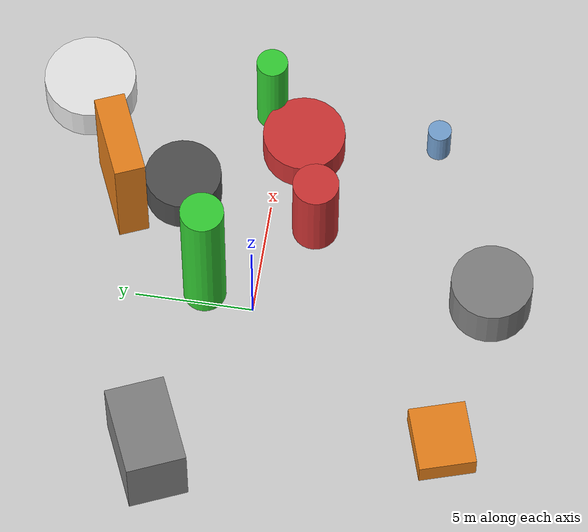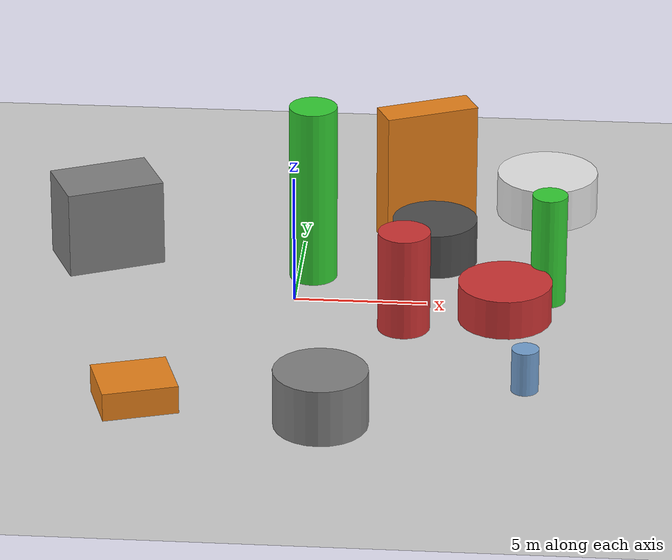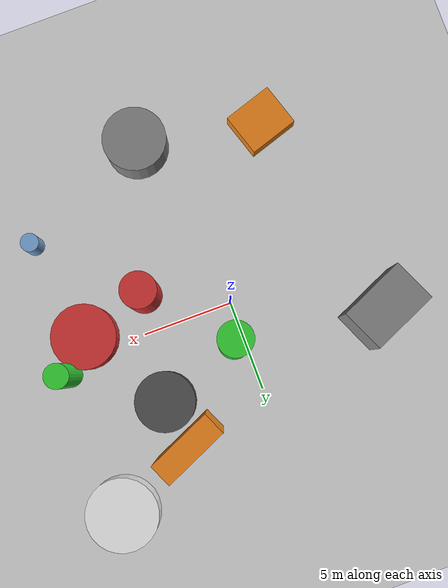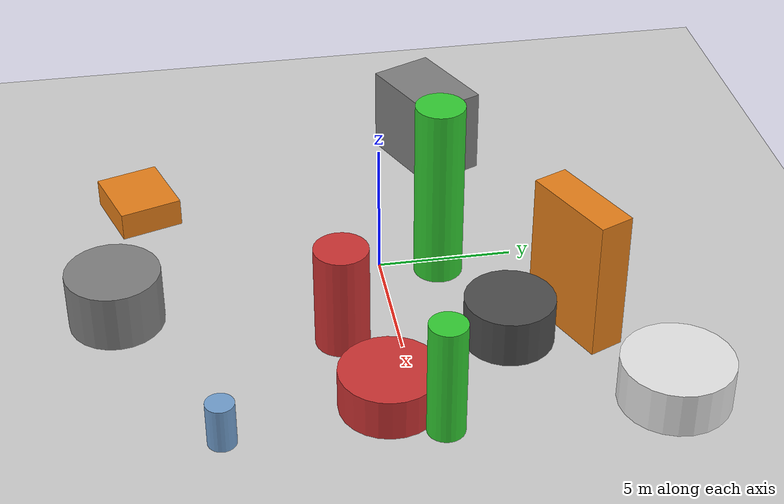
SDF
<?xml version='1.0'?>
<sdf version='1.6'>
  <world name='default'>
    <!-- Sun light -->
    <light name='sun' type='directional'>
      <cast_shadows>1</cast_shadows>
      <pose>0 0 10 0 0 0</pose>
      <diffuse>0.8 0.8 0.8 1</diffuse>
      <specular>0.2 0.2 0.2 1</specular>
      <attenuation>
        <range>1000</range>
        <constant>0.9</constant>
        <linear>0.01</linear>
        <quadratic>0.001</quadratic>
      </attenuation>
      <direction>-0.5 0.1 -0.9</direction>
    </light>

    <!-- Ground plane -->
    <model name='ground_plane'>
      <static>1</static>
      <link name='link'>
        <collision name='collision'>
          <geometry>
            <plane>
              <normal>0 0 1</normal>
              <size>100 100</size>
            </plane>
          </geometry>
          <surface>
            <contact>
              <collide_bitmask>65535</collide_bitmask>
              <ode/>
            </contact>
            <friction>
              <ode>
                <mu>100</mu>
                <mu2>50</mu2>
              </ode>
              <torsional><ode/></torsional>
            </friction>
            <bounce/>
          </surface>
          <max_contacts>10</max_contacts>
        </collision>
        <visual name='visual'>
          <cast_shadows>0</cast_shadows>
          <geometry>
            <plane>
              <normal>0 0 1</normal>
              <size>100 100</size>
            </plane>
          </geometry>
          <material>
            <script>
              <uri>file://media/materials/scripts/gazebo.material</uri>
              <n>Gazebo/Grey</n>
            </script>
          </material>
        </visual>
      </link>
    </model>

    <!-- Environment -->
    <magnetic_field>6e-06 2.3e-05 -4.2e-05</magnetic_field>
    <atmosphere type='adiabatic'/>
    <physics name='default_physics' default='0' type='ode'>
      <gravity>0 0 -9.8</gravity>
      <max_step_size>0.004</max_step_size>
      <real_time_factor>1</real_time_factor>
      <real_time_update_rate>250</real_time_update_rate>
    </physics>
    <scene>
      <ambient>0.4 0.4 0.4 1</ambient>
      <background>0.7 0.7 0.7 1</background>
      <shadows>1</shadows>
    </scene>
    <wind/>
    <spherical_coordinates>
      <surface_model>EARTH_WGS84</surface_model>
      <latitude_deg>0</latitude_deg>
      <longitude_deg>0</longitude_deg>
      <elevation>0</elevation>
      <heading_deg>0</heading_deg>
    </spherical_coordinates>

    <!-- ============ OBSTACLES (11) ============ -->
    <model name='obs_00'>
      <static>1</static>
      <link name='link'>
        <visual name='visual'>
          <geometry>
            <box>
              <size>1.3013 3.6690 5.2982</size>
            </box>
          </geometry>
          <material>
            <script>
              <n>Gazebo/Orange</n>
              <uri>file://media/materials/scripts/gazebo.material</uri>
            </script>
            <ambient>0.9 0.5 0.1 1</ambient>
          </material>
        </visual>
        <collision name='collision'>
          <geometry>
            <box>
              <size>1.3013 3.6690 5.2982</size>
            </box>
          </geometry>
          <max_contacts>10</max_contacts>
          <surface>
            <contact><ode/></contact>
            <bounce/>
            <friction>
              <ode><mu>1</mu><mu2>1</mu2></ode>
              <torsional><ode/></torsional>
            </friction>
          </surface>
        </collision>
      </link>
      <pose>4.6382 6.3205 2.6491 0 0 1.9827</pose>
    </model>

    <model name='obs_01'>
      <static>1</static>
      <link name='link'>
        <visual name='visual'>
          <geometry>
            <cylinder>
              <radius>0.6652</radius>
              <length>4.3979</length>
            </cylinder>
          </geometry>
          <material>
            <script>
              <n>Gazebo/Green</n>
              <uri>file://media/materials/scripts/gazebo.material</uri>
            </script>
            <ambient>0.2 0.8 0.2 1</ambient>
          </material>
        </visual>
        <collision name='collision'>
          <geometry>
            <cylinder>
              <radius>0.6652</radius>
              <length>4.3979</length>
            </cylinder>
          </geometry>
          <max_contacts>10</max_contacts>
          <surface>
            <contact><ode/></contact>
            <bounce/>
            <friction>
              <ode><mu>1</mu><mu2>1</mu2></ode>
              <torsional><ode/></torsional>
            </friction>
          </surface>
        </collision>
      </link>
      <pose>9.5597 0.6541 2.1990 0 0 1.6153</pose>
    </model>

    <model name='obs_02'>
      <static>1</static>
      <link name='link'>
        <visual name='visual'>
          <geometry>
            <box>
              <size>3.7743 2.4987 3.3634</size>
            </box>
          </geometry>
          <material>
            <script>
              <n>Gazebo/Grey</n>
              <uri>file://media/materials/scripts/gazebo.material</uri>
            </script>
            <ambient>0.5 0.5 0.5 1</ambient>
          </material>
        </visual>
        <collision name='collision'>
          <geometry>
            <box>
              <size>3.7743 2.4987 3.3634</size>
            </box>
          </geometry>
          <max_contacts>10</max_contacts>
          <surface>
            <contact><ode/></contact>
            <bounce/>
            <friction>
              <ode><mu>1</mu><mu2>1</mu2></ode>
              <torsional><ode/></torsional>
            </friction>
          </surface>
        </collision>
      </link>
      <pose>-7.4848 3.1950 1.6817 0 0 0.4157</pose>
    </model>

    <model name='obs_03'>
      <static>1</static>
      <link name='link'>
        <visual name='visual'>
          <geometry>
            <cylinder>
              <radius>0.5023</radius>
              <length>1.6785</length>
            </cylinder>
          </geometry>
          <material>
            <script>
              <n>Gazebo/Blue</n>
              <uri>file://media/materials/scripts/gazebo.material</uri>
            </script>
            <ambient>0.447 0.624 0.812 1</ambient>
          </material>
        </visual>
        <collision name='collision'>
          <geometry>
            <cylinder>
              <radius>0.5023</radius>
              <length>1.6785</length>
            </cylinder>
          </geometry>
          <max_contacts>10</max_contacts>
          <surface>
            <contact><ode/></contact>
            <bounce/>
            <friction>
              <ode><mu>1</mu><mu2>1</mu2></ode>
              <torsional><ode/></torsional>
            </friction>
          </surface>
        </collision>
      </link>
      <pose>8.9370 -6.6975 0.8393 0 0 2.5368</pose>
    </model>

    <model name='obs_04'>
      <static>1</static>
      <link name='link'>
        <visual name='visual'>
          <geometry>
            <cylinder>
              <radius>0.9105</radius>
              <length>7.0469</length>
            </cylinder>
          </geometry>
          <material>
            <script>
              <n>Gazebo/Green</n>
              <uri>file://media/materials/scripts/gazebo.material</uri>
            </script>
            <ambient>0.2 0.8 0.2 1</ambient>
          </material>
        </visual>
        <collision name='collision'>
          <geometry>
            <cylinder>
              <radius>0.9105</radius>
              <length>7.0469</length>
            </cylinder>
          </geometry>
          <max_contacts>10</max_contacts>
          <surface>
            <contact><ode/></contact>
            <bounce/>
            <friction>
              <ode><mu>1</mu><mu2>1</mu2></ode>
              <torsional><ode/></torsional>
            </friction>
          </surface>
        </collision>
      </link>
      <pose>0.5535 2.1319 3.5234 0 0 1.1131</pose>
    </model>

    <model name='obs_05'>
      <static>1</static>
      <link name='link'>
        <visual name='visual'>
          <geometry>
            <cylinder>
              <radius>1.9707</radius>
              <length>1.6889</length>
            </cylinder>
          </geometry>
          <material>
            <script>
              <n>Gazebo/White</n>
              <uri>file://media/materials/scripts/gazebo.material</uri>
            </script>
            <ambient>0.9 0.9 0.9 1</ambient>
          </material>
        </visual>
        <collision name='collision'>
          <geometry>
            <cylinder>
              <radius>1.9707</radius>
              <length>1.6889</length>
            </cylinder>
          </geometry>
          <max_contacts>10</max_contacts>
          <surface>
            <contact><ode/></contact>
            <bounce/>
            <friction>
              <ode><mu>1</mu><mu2>1</mu2></ode>
              <torsional><ode/></torsional>
            </friction>
          </surface>
        </collision>
      </link>
      <pose>9.2873 8.5783 0.8445 0 0 2.1154</pose>
    </model>

    <model name='obs_06'>
      <static>1</static>
      <link name='link'>
        <visual name='visual'>
          <geometry>
            <cylinder>
              <radius>1.6311</radius>
              <length>1.7649</length>
            </cylinder>
          </geometry>
          <material>
            <script>
              <n>Gazebo/DarkGrey</n>
              <uri>file://media/materials/scripts/gazebo.material</uri>
            </script>
            <ambient>0.3 0.3 0.3 1</ambient>
          </material>
        </visual>
        <collision name='collision'>
          <geometry>
            <cylinder>
              <radius>1.6311</radius>
              <length>1.7649</length>
            </cylinder>
          </geometry>
          <max_contacts>10</max_contacts>
          <surface>
            <contact><ode/></contact>
            <bounce/>
            <friction>
              <ode><mu>1</mu><mu2>1</mu2></ode>
              <torsional><ode/></torsional>
            </friction>
          </surface>
        </collision>
      </link>
      <pose>5.1053 3.7974 0.8824 0 0 2.2878</pose>
    </model>

    <model name='obs_07'>
      <static>1</static>
      <link name='link'>
        <visual name='visual'>
          <geometry>
            <cylinder>
              <radius>0.9799</radius>
              <length>3.9532</length>
            </cylinder>
          </geometry>
          <material>
            <script>
              <n>Gazebo/Red</n>
              <uri>file://media/materials/scripts/gazebo.material</uri>
            </script>
            <ambient>0.8 0.2 0.2 1</ambient>
          </material>
        </visual>
        <collision name='collision'>
          <geometry>
            <cylinder>
              <radius>0.9799</radius>
              <length>3.9532</length>
            </cylinder>
          </geometry>
          <max_contacts>10</max_contacts>
          <surface>
            <contact><ode/></contact>
            <bounce/>
            <friction>
              <ode><mu>1</mu><mu2>1</mu2></ode>
              <torsional><ode/></torsional>
            </friction>
          </surface>
        </collision>
      </link>
      <pose>4.2590 -2.0202 1.9766 0 0 0.5976</pose>
    </model>

    <model name='obs_08'>
      <static>1</static>
      <link name='link'>
        <visual name='visual'>
          <geometry>
            <cylinder>
              <radius>1.7678</radius>
              <length>1.5277</length>
            </cylinder>
          </geometry>
          <material>
            <script>
              <n>Gazebo/Red</n>
              <uri>file://media/materials/scripts/gazebo.material</uri>
            </script>
            <ambient>0.8 0.2 0.2 1</ambient>
          </material>
        </visual>
        <collision name='collision'>
          <geometry>
            <cylinder>
              <radius>1.7678</radius>
              <length>1.5277</length>
            </cylinder>
          </geometry>
          <max_contacts>10</max_contacts>
          <surface>
            <contact><ode/></contact>
            <bounce/>
            <friction>
              <ode><mu>1</mu><mu2>1</mu2></ode>
              <torsional><ode/></torsional>
            </friction>
          </surface>
        </collision>
      </link>
      <pose>7.9923 -0.9703 0.7638 0 0 1.4534</pose>
    </model>

    <model name='obs_09'>
      <static>1</static>
      <link name='link'>
        <visual name='visual'>
          <geometry>
            <box>
              <size>2.7825 2.3921 1.0738</size>
            </box>
          </geometry>
          <material>
            <script>
              <n>Gazebo/Orange</n>
              <uri>file://media/materials/scripts/gazebo.material</uri>
            </script>
            <ambient>0.9 0.5 0.1 1</ambient>
          </material>
        </visual>
        <collision name='collision'>
          <geometry>
            <box>
              <size>2.7825 2.3921 1.0738</size>
            </box>
          </geometry>
          <max_contacts>10</max_contacts>
          <surface>
            <contact><ode/></contact>
            <bounce/>
            <friction>
              <ode><mu>1</mu><mu2>1</mu2></ode>
              <torsional><ode/></torsional>
            </friction>
          </surface>
        </collision>
      </link>
      <pose>-5.0419 -8.7195 0.5369 0 0 0.3076</pose>
    </model>

    <model name='obs_10'>
      <static>1</static>
      <link name='link'>
        <visual name='visual'>
          <geometry>
            <cylinder>
              <radius>1.7201</radius>
              <length>2.1642</length>
            </cylinder>
          </geometry>
          <material>
            <script>
              <n>Gazebo/Grey</n>
              <uri>file://media/materials/scripts/gazebo.material</uri>
            </script>
            <ambient>0.5 0.5 0.5 1</ambient>
          </material>
        </visual>
        <collision name='collision'>
          <geometry>
            <cylinder>
              <radius>1.7201</radius>
              <length>2.1642</length>
            </cylinder>
          </geometry>
          <max_contacts>10</max_contacts>
          <surface>
            <contact><ode/></contact>
            <bounce/>
            <friction>
              <ode><mu>1</mu><mu2>1</mu2></ode>
              <torsional><ode/></torsional>
            </friction>
          </surface>
        </collision>
      </link>
      <pose>1.7688 -9.8562 1.0821 0 0 2.9103</pose>
    </model>

    <!-- GUI camera -->
    <gui fullscreen='0'>
      <camera name='user_camera'>
        <pose>-15 0 18 0 0.85 0.15</pose>
        <view_controller>orbit</view_controller>
        <projection_type>perspective</projection_type>
      </camera>
    </gui>
  </world>
</sdf>
